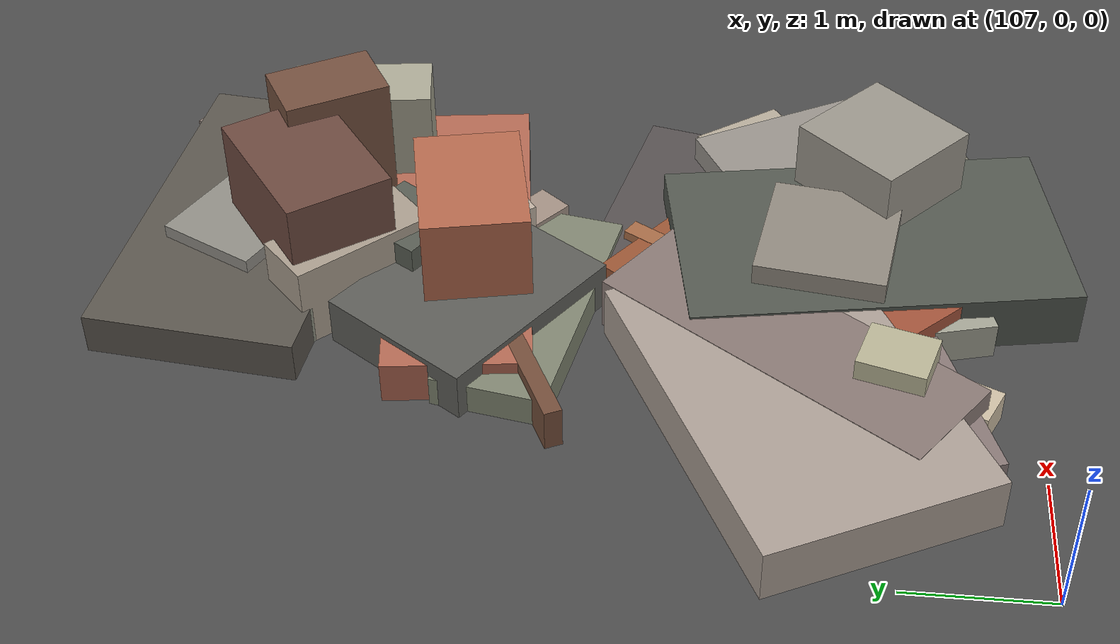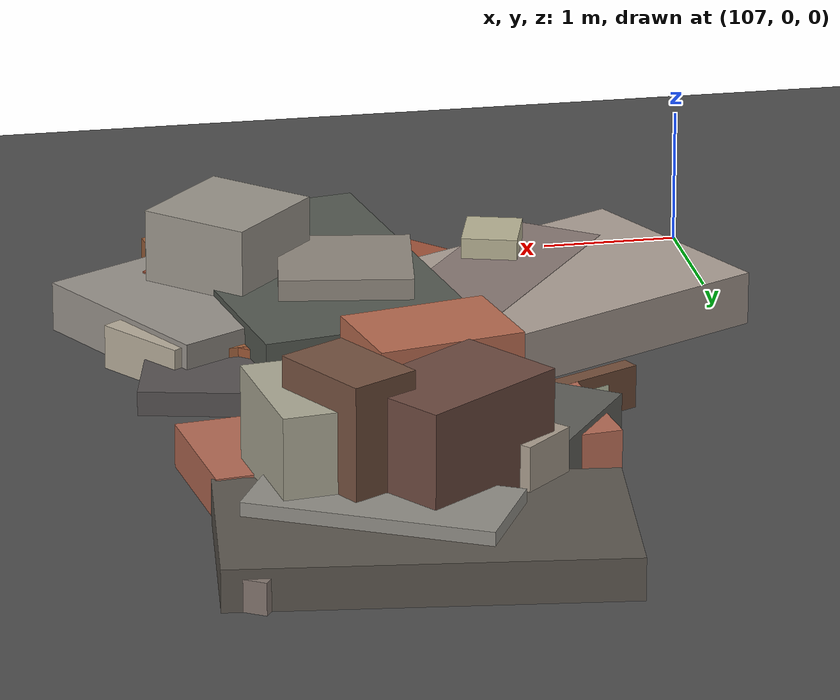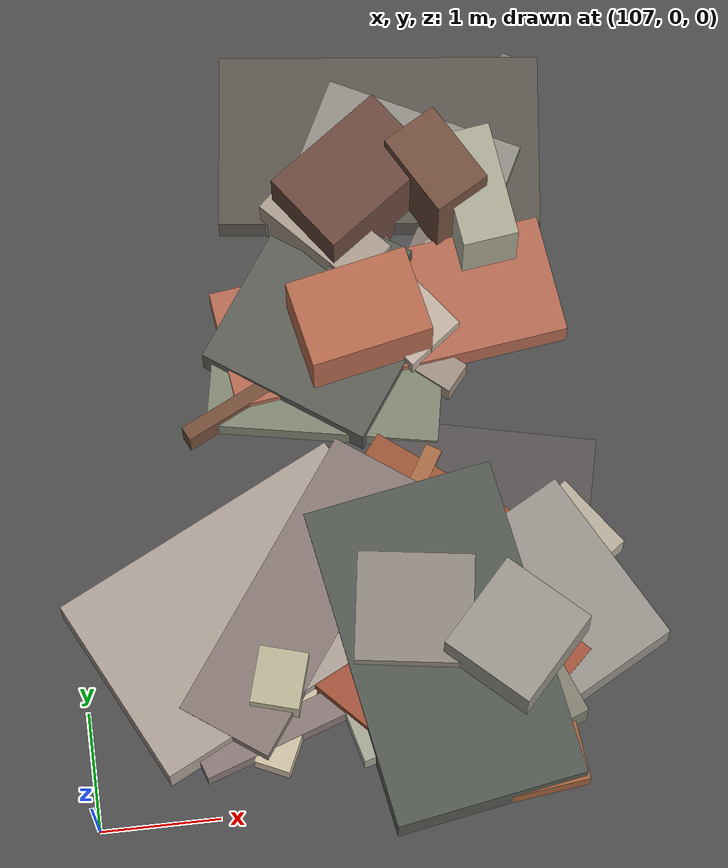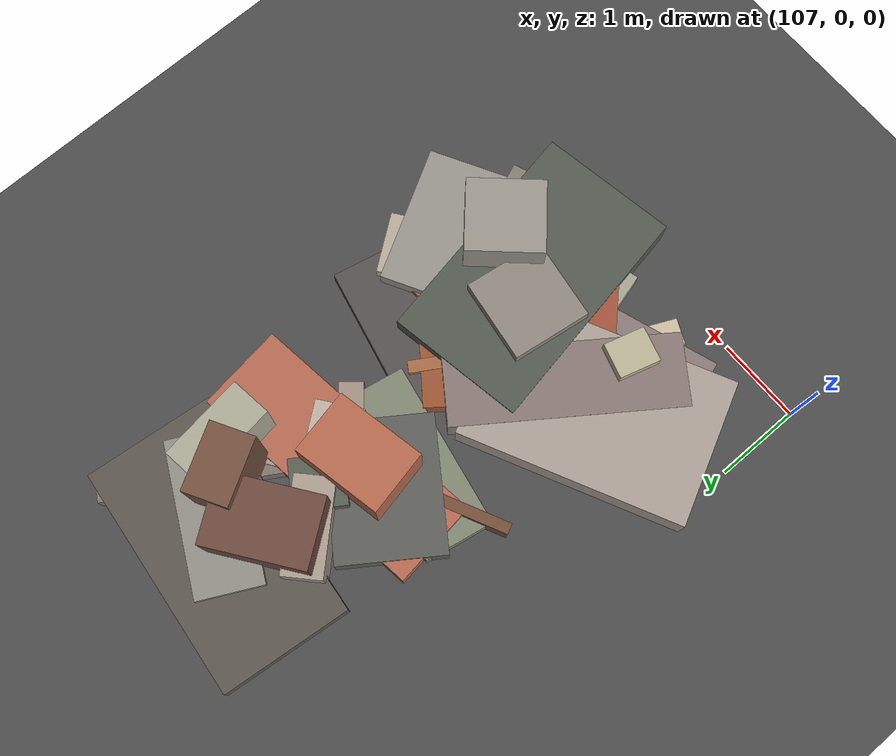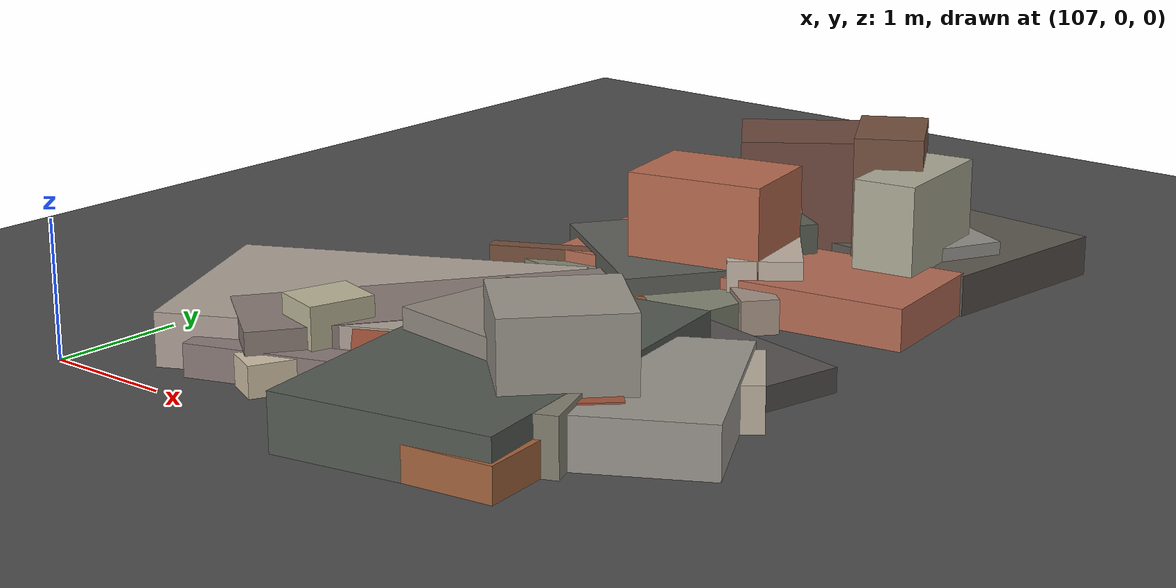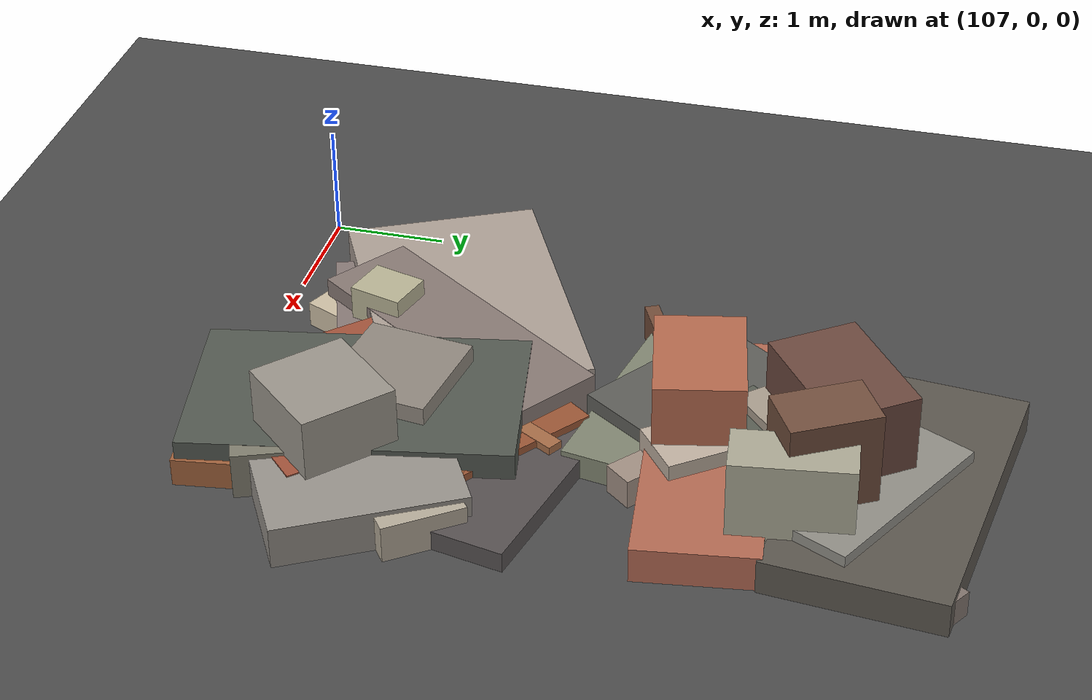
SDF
<sdf version="1.6">
 <world name="navitas_arena">
  <model name="ground_plane">
   <static>true</static>
   <link name="link">
    <collision name="collision">
     <geometry><plane><normal>0 0 1</normal><size>400 400</size></plane></geometry>
     <surface><friction><ode><mu>0.800</mu><mu2>0.800</mu2></ode></friction></surface>
    </collision>
    <visual name="visual">
     <cast_shadows>false</cast_shadows>
     <geometry><plane><normal>0 0 1</normal><size>400 400</size></plane></geometry>
     <material>
      <specular>0.04 0.04 0.04 1</specular>
      <script>
       <uri>file://media/materials/scripts/navitas_asphalt.material</uri>
       <name>Navitas/RealArenaAsphalt</name>
      </script>
     </material>
    </visual>
   </link>
  </model>
  <model name="deb_zor_47">
   <static>true</static>
   <pose>109.391 1.379 0.000 0 0 0</pose>
   <link name="link">
    <collision name="col_0">
     <pose>0.495 0.582 0.123 0.000 0.000 0.919</pose>
     <geometry><box><size>1.496 1.721 0.245</size></box></geometry>
    </collision>
    <visual name="vis_0">
     <pose>0.495 0.582 0.123 0.000 0.000 0.919</pose>
     <geometry><box><size>1.496 1.721 0.245</size></box></geometry>
     <material>
      <ambient>0.57 0.32 0.20 1</ambient>
      <diffuse>0.61 0.34 0.21 1</diffuse>
      <specular>0.05 0.05 0.045 1</specular>
     </material>
    </visual>
    <collision name="col_1">
     <pose>0.601 -0.191 0.206 0.000 0.000 1.747</pose>
     <geometry><box><size>2.757 1.621 0.412</size></box></geometry>
    </collision>
    <visual name="vis_1">
     <pose>0.601 -0.191 0.206 0.000 0.000 1.747</pose>
     <geometry><box><size>2.757 1.621 0.412</size></box></geometry>
     <material>
      <ambient>0.30 0.32 0.30 1</ambient>
      <diffuse>0.33 0.35 0.32 1</diffuse>
      <specular>0.05 0.05 0.045 1</specular>
     </material>
    </visual>
    <collision name="col_2">
     <pose>0.708 -0.103 0.205 0.000 0.000 1.951</pose>
     <geometry><box><size>2.214 1.278 0.410</size></box></geometry>
    </collision>
    <visual name="vis_2">
     <pose>0.708 -0.103 0.205 0.000 0.000 1.951</pose>
     <geometry><box><size>2.214 1.278 0.410</size></box></geometry>
     <material>
      <ambient>0.47 0.47 0.41 1</ambient>
      <diffuse>0.51 0.50 0.44 1</diffuse>
      <specular>0.05 0.05 0.045 1</specular>
     </material>
    </visual>
    <collision name="col_3">
     <pose>0.481 -0.086 0.069 0.000 0.000 2.084</pose>
     <geometry><box><size>0.275 0.406 0.137</size></box></geometry>
    </collision>
    <visual name="vis_3">
     <pose>0.481 -0.086 0.069 0.000 0.000 2.084</pose>
     <geometry><box><size>0.275 0.406 0.137</size></box></geometry>
     <material>
      <ambient>0.58 0.36 0.24 1</ambient>
      <diffuse>0.62 0.38 0.26 1</diffuse>
      <specular>0.05 0.05 0.045 1</specular>
     </material>
    </visual>
    <collision name="col_4">
     <pose>0.186 0.640 0.124 0.000 0.000 1.028</pose>
     <geometry><box><size>2.069 0.143 0.249</size></box></geometry>
    </collision>
    <visual name="vis_4">
     <pose>0.186 0.640 0.124 0.000 0.000 1.028</pose>
     <geometry><box><size>2.069 0.143 0.249</size></box></geometry>
     <material>
      <ambient>0.61 0.40 0.26 1</ambient>
      <diffuse>0.66 0.43 0.28 1</diffuse>
      <specular>0.05 0.05 0.045 1</specular>
     </material>
    </visual>
   </link>
  </model>
  <model name="deb_zor_102">
   <static>true</static>
   <pose>110.293 5.330 0.000 0 0 0</pose>
   <link name="link">
    <collision name="col_0">
     <pose>0.081 -0.204 0.604 0.000 0.000 2.091</pose>
     <geometry><box><size>0.768 0.508 1.208</size></box></geometry>
    </collision>
    <visual name="vis_0">
     <pose>0.081 -0.204 0.604 0.000 0.000 2.091</pose>
     <geometry><box><size>0.768 0.508 1.208</size></box></geometry>
     <material>
      <ambient>0.43 0.30 0.23 1</ambient>
      <diffuse>0.46 0.32 0.25 1</diffuse>
      <specular>0.05 0.05 0.045 1</specular>
     </material>
    </visual>
    <collision name="col_1">
     <pose>0.367 0.059 0.116 0.000 0.000 1.026</pose>
     <geometry><box><size>2.196 0.243 0.231</size></box></geometry>
    </collision>
    <visual name="vis_1">
     <pose>0.367 0.059 0.116 0.000 0.000 1.026</pose>
     <geometry><box><size>2.196 0.243 0.231</size></box></geometry>
     <material>
      <ambient>0.47 0.43 0.40 1</ambient>
      <diffuse>0.51 0.46 0.43 1</diffuse>
      <specular>0.05 0.05 0.045 1</specular>
     </material>
    </visual>
    <collision name="col_2">
     <pose>-0.142 0.398 0.118 0.000 0.000 0.963</pose>
     <geometry><box><size>1.185 0.221 0.236</size></box></geometry>
    </collision>
    <visual name="vis_2">
     <pose>-0.142 0.398 0.118 0.000 0.000 0.963</pose>
     <geometry><box><size>1.185 0.221 0.236</size></box></geometry>
     <material>
      <ambient>0.76 0.72 0.65 1</ambient>
      <diffuse>0.82 0.78 0.71 1</diffuse>
      <specular>0.05 0.05 0.045 1</specular>
     </material>
    </visual>
    <collision name="col_3">
     <pose>-0.333 0.350 0.151 0.000 0.000 -0.107</pose>
     <geometry><box><size>2.754 1.521 0.303</size></box></geometry>
    </collision>
    <visual name="vis_3">
     <pose>-0.333 0.350 0.151 0.000 0.000 -0.107</pose>
     <geometry><box><size>2.754 1.521 0.303</size></box></geometry>
     <material>
      <ambient>0.33 0.31 0.29 1</ambient>
      <diffuse>0.36 0.34 0.31 1</diffuse>
      <specular>0.05 0.05 0.045 1</specular>
     </material>
    </visual>
    <collision name="col_4">
     <pose>0.405 -0.388 0.491 0.000 0.000 1.702</pose>
     <geometry><box><size>1.006 0.475 0.982</size></box></geometry>
    </collision>
    <visual name="vis_4">
     <pose>0.405 -0.388 0.491 0.000 0.000 1.702</pose>
     <geometry><box><size>1.006 0.475 0.982</size></box></geometry>
     <material>
      <ambient>0.63 0.62 0.55 1</ambient>
      <diffuse>0.68 0.67 0.59 1</diffuse>
      <specular>0.05 0.05 0.045 1</specular>
     </material>
    </visual>
    <collision name="col_5">
     <pose>-0.088 0.166 0.201 0.000 0.000 -0.469</pose>
     <geometry><box><size>1.744 0.761 0.402</size></box></geometry>
    </collision>
    <visual name="vis_5">
     <pose>-0.088 0.166 0.201 0.000 0.000 -0.469</pose>
     <geometry><box><size>1.744 0.761 0.402</size></box></geometry>
     <material>
      <ambient>0.53 0.52 0.49 1</ambient>
      <diffuse>0.57 0.56 0.53 1</diffuse>
      <specular>0.05 0.05 0.045 1</specular>
     </material>
    </visual>
   </link>
  </model>
  <model name="deb_zor_155">
   <static>true</static>
   <pose>109.297 4.111 0.000 0 0 0</pose>
   <link name="link">
    <collision name="col_0">
     <pose>0.302 -0.133 0.497 0.000 0.000 0.206</pose>
     <geometry><box><size>1.048 0.754 0.993</size></box></geometry>
    </collision>
    <visual name="vis_0">
     <pose>0.302 -0.133 0.497 0.000 0.000 0.206</pose>
     <geometry><box><size>1.048 0.754 0.993</size></box></geometry>
     <material>
      <ambient>0.67 0.39 0.28 1</ambient>
      <diffuse>0.72 0.42 0.31 1</diffuse>
      <specular>0.05 0.05 0.045 1</specular>
     </material>
    </visual>
    <collision name="col_1">
     <pose>0.564 0.014 0.157 0.000 0.000 0.131</pose>
     <geometry><box><size>2.880 1.031 0.314</size></box></geometry>
    </collision>
    <visual name="vis_1">
     <pose>0.564 0.014 0.157 0.000 0.000 0.131</pose>
     <geometry><box><size>2.880 1.031 0.314</size></box></geometry>
     <material>
      <ambient>0.66 0.39 0.30 1</ambient>
      <diffuse>0.71 0.42 0.33 1</diffuse>
      <specular>0.05 0.05 0.045 1</specular>
     </material>
    </visual>
    <collision name="col_2">
     <pose>-0.064 -0.147 0.179 0.000 0.000 -0.604</pose>
     <geometry><box><size>1.542 1.216 0.358</size></box></geometry>
    </collision>
    <visual name="vis_2">
     <pose>-0.064 -0.147 0.179 0.000 0.000 -0.604</pose>
     <geometry><box><size>1.542 1.216 0.358</size></box></geometry>
     <material>
      <ambient>0.34 0.35 0.33 1</ambient>
      <diffuse>0.37 0.37 0.35 1</diffuse>
      <specular>0.05 0.05 0.045 1</specular>
     </material>
    </visual>
    <collision name="col_3">
     <pose>0.417 0.357 0.270 0.000 0.000 0.997</pose>
     <geometry><box><size>0.595 0.570 0.540</size></box></geometry>
    </collision>
    <visual name="vis_3">
     <pose>0.417 0.357 0.270 0.000 0.000 0.997</pose>
     <geometry><box><size>0.595 0.570 0.540</size></box></geometry>
     <material>
      <ambient>0.33 0.35 0.30 1</ambient>
      <diffuse>0.35 0.37 0.33 1</diffuse>
      <specular>0.05 0.05 0.045 1</specular>
     </material>
    </visual>
    <collision name="col_4">
     <pose>-0.035 -0.570 0.113 0.000 0.000 -0.184</pose>
     <geometry><box><size>1.961 0.815 0.226</size></box></geometry>
    </collision>
    <visual name="vis_4">
     <pose>-0.035 -0.570 0.113 0.000 0.000 -0.184</pose>
     <geometry><box><size>1.961 0.815 0.226</size></box></geometry>
     <material>
      <ambient>0.47 0.49 0.42 1</ambient>
      <diffuse>0.51 0.53 0.45 1</diffuse>
      <specular>0.05 0.05 0.045 1</specular>
     </material>
    </visual>
    <collision name="col_5">
     <pose>-0.015 -0.450 0.082 0.000 0.000 0.899</pose>
     <geometry><box><size>0.357 0.243 0.164</size></box></geometry>
    </collision>
    <visual name="vis_5">
     <pose>-0.015 -0.450 0.082 0.000 0.000 0.899</pose>
     <geometry><box><size>0.357 0.243 0.164</size></box></geometry>
     <material>
      <ambient>0.74 0.71 0.63 1</ambient>
      <diffuse>0.80 0.76 0.68 1</diffuse>
      <specular>0.05 0.05 0.045 1</specular>
     </material>
    </visual>
    <collision name="col_6">
     <pose>-0.243 -0.380 0.157 0.000 0.000 0.456</pose>
     <geometry><box><size>2.244 0.128 0.315</size></box></geometry>
    </collision>
    <visual name="vis_6">
     <pose>-0.243 -0.380 0.157 0.000 0.000 0.456</pose>
     <geometry><box><size>2.244 0.128 0.315</size></box></geometry>
     <material>
      <ambient>0.43 0.28 0.21 1</ambient>
      <diffuse>0.46 0.31 0.23 1</diffuse>
      <specular>0.05 0.05 0.045 1</specular>
     </material>
    </visual>
   </link>
  </model>
  <model name="deb_zor_209">
   <static>true</static>
   <pose>108.663 1.267 0.000 0 0 0</pose>
   <link name="link">
    <collision name="col_0">
     <pose>0.131 -0.538 0.121 0.000 0.000 0.334</pose>
     <geometry><box><size>1.910 0.252 0.241</size></box></geometry>
    </collision>
    <visual name="vis_0">
     <pose>0.131 -0.538 0.121 0.000 0.000 0.334</pose>
     <geometry><box><size>1.910 0.252 0.241</size></box></geometry>
     <material>
      <ambient>0.50 0.45 0.43 1</ambient>
      <diffuse>0.54 0.48 0.47 1</diffuse>
      <specular>0.05 0.05 0.045 1</specular>
     </material>
    </visual>
    <collision name="col_1">
     <pose>-0.326 0.385 0.096 0.000 0.000 1.304</pose>
     <geometry><box><size>0.374 0.253 0.193</size></box></geometry>
    </collision>
    <visual name="vis_1">
     <pose>-0.326 0.385 0.096 0.000 0.000 1.304</pose>
     <geometry><box><size>0.374 0.253 0.193</size></box></geometry>
     <material>
      <ambient>0.65 0.62 0.52 1</ambient>
      <diffuse>0.70 0.67 0.56 1</diffuse>
      <specular>0.05 0.05 0.045 1</specular>
     </material>
    </visual>
    <collision name="col_2">
     <pose>-0.252 0.396 0.196 0.000 0.000 0.464</pose>
     <geometry><box><size>2.612 1.701 0.392</size></box></geometry>
    </collision>
    <visual name="vis_2">
     <pose>-0.252 0.396 0.196 0.000 0.000 0.464</pose>
     <geometry><box><size>2.612 1.701 0.392</size></box></geometry>
     <material>
      <ambient>0.63 0.59 0.54 1</ambient>
      <diffuse>0.68 0.63 0.59 1</diffuse>
      <specular>0.05 0.05 0.045 1</specular>
     </material>
    </visual>
    <collision name="col_3">
     <pose>0.057 -0.376 0.115 0.000 0.000 1.138</pose>
     <geometry><box><size>1.220 0.306 0.230</size></box></geometry>
    </collision>
    <visual name="vis_3">
     <pose>0.057 -0.376 0.115 0.000 0.000 1.138</pose>
     <geometry><box><size>1.220 0.306 0.230</size></box></geometry>
     <material>
      <ambient>0.75 0.69 0.60 1</ambient>
      <diffuse>0.81 0.75 0.65 1</diffuse>
      <specular>0.05 0.05 0.045 1</specular>
     </material>
    </visual>
    <collision name="col_4">
     <pose>0.459 -0.180 0.136 0.000 0.000 1.830</pose>
     <geometry><box><size>1.599 0.204 0.272</size></box></geometry>
    </collision>
    <visual name="vis_4">
     <pose>0.459 -0.180 0.136 0.000 0.000 1.830</pose>
     <geometry><box><size>1.599 0.204 0.272</size></box></geometry>
     <material>
      <ambient>0.61 0.60 0.54 1</ambient>
      <diffuse>0.65 0.65 0.59 1</diffuse>
      <specular>0.05 0.05 0.045 1</specular>
     </material>
    </visual>
    <collision name="col_5">
     <pose>-0.059 -0.256 0.275 0.000 0.000 1.290</pose>
     <geometry><box><size>0.482 0.411 0.550</size></box></geometry>
    </collision>
    <visual name="vis_5">
     <pose>-0.059 -0.256 0.275 0.000 0.000 1.290</pose>
     <geometry><box><size>0.482 0.411 0.550</size></box></geometry>
     <material>
      <ambient>0.68 0.66 0.55 1</ambient>
      <diffuse>0.73 0.71 0.59 1</diffuse>
      <specular>0.05 0.05 0.045 1</specular>
     </material>
    </visual>
    <collision name="col_6">
     <pose>0.203 0.448 0.198 0.000 0.000 0.952</pose>
     <geometry><box><size>2.641 0.835 0.396</size></box></geometry>
    </collision>
    <visual name="vis_6">
     <pose>0.203 0.448 0.198 0.000 0.000 0.952</pose>
     <geometry><box><size>2.641 0.835 0.396</size></box></geometry>
     <material>
      <ambient>0.50 0.45 0.43 1</ambient>
      <diffuse>0.54 0.48 0.46 1</diffuse>
      <specular>0.05 0.05 0.045 1</specular>
     </material>
    </visual>
   </link>
  </model>
  <model name="deb_zor_267">
   <static>true</static>
   <pose>110.295 1.432 0.000 0 0 0</pose>
   <link name="link">
    <collision name="col_0">
     <pose>-0.613 -0.421 0.098 0.000 0.000 2.945</pose>
     <geometry><box><size>0.451 0.383 0.197</size></box></geometry>
    </collision>
    <visual name="vis_0">
     <pose>-0.613 -0.421 0.098 0.000 0.000 2.945</pose>
     <geometry><box><size>0.451 0.383 0.197</size></box></geometry>
     <material>
      <ambient>0.59 0.35 0.20 1</ambient>
      <diffuse>0.64 0.37 0.22 1</diffuse>
      <specular>0.05 0.05 0.045 1</specular>
     </material>
    </visual>
    <collision name="col_1">
     <pose>-0.182 -0.411 0.124 0.000 0.000 1.698</pose>
     <geometry><box><size>2.375 1.605 0.247</size></box></geometry>
    </collision>
    <visual name="vis_1">
     <pose>-0.182 -0.411 0.124 0.000 0.000 1.698</pose>
     <geometry><box><size>2.375 1.605 0.247</size></box></geometry>
     <material>
      <ambient>0.60 0.36 0.23 1</ambient>
      <diffuse>0.64 0.39 0.24 1</diffuse>
      <specular>0.05 0.05 0.045 1</specular>
     </material>
    </visual>
    <collision name="col_2">
     <pose>-0.517 0.040 0.284 0.000 0.000 2.999</pose>
     <geometry><box><size>0.975 0.928 0.569</size></box></geometry>
    </collision>
    <visual name="vis_2">
     <pose>-0.517 0.040 0.284 0.000 0.000 2.999</pose>
     <geometry><box><size>0.975 0.928 0.569</size></box></geometry>
     <material>
      <ambient>0.53 0.50 0.46 1</ambient>
      <diffuse>0.57 0.54 0.50 1</diffuse>
      <specular>0.05 0.05 0.045 1</specular>
     </material>
    </visual>
    <collision name="col_3">
     <pose>0.100 0.608 0.089 0.000 0.000 1.352</pose>
     <geometry><box><size>2.024 1.782 0.178</size></box></geometry>
    </collision>
    <visual name="vis_3">
     <pose>0.100 0.608 0.089 0.000 0.000 1.352</pose>
     <geometry><box><size>2.024 1.782 0.178</size></box></geometry>
     <material>
      <ambient>0.32 0.29 0.30 1</ambient>
      <diffuse>0.34 0.32 0.32 1</diffuse>
      <specular>0.05 0.05 0.045 1</specular>
     </material>
    </visual>
    <collision name="col_4">
     <pose>0.624 -0.183 0.112 0.000 0.000 2.519</pose>
     <geometry><box><size>0.421 0.464 0.224</size></box></geometry>
    </collision>
    <visual name="vis_4">
     <pose>0.624 -0.183 0.112 0.000 0.000 2.519</pose>
     <geometry><box><size>0.421 0.464 0.224</size></box></geometry>
     <material>
      <ambient>0.29 0.27 0.27 1</ambient>
      <diffuse>0.32 0.29 0.29 1</diffuse>
      <specular>0.05 0.05 0.045 1</specular>
     </material>
    </visual>
    <collision name="col_5">
     <pose>0.115 -0.243 0.183 0.000 0.000 3.649</pose>
     <geometry><box><size>2.432 1.608 0.366</size></box></geometry>
    </collision>
    <visual name="vis_5">
     <pose>0.115 -0.243 0.183 0.000 0.000 3.649</pose>
     <geometry><box><size>2.432 1.608 0.366</size></box></geometry>
     <material>
      <ambient>0.56 0.54 0.50 1</ambient>
      <diffuse>0.60 0.58 0.55 1</diffuse>
      <specular>0.05 0.05 0.045 1</specular>
     </material>
    </visual>
    <collision name="col_6">
     <pose>0.846 0.041 0.140 0.000 0.000 1.138</pose>
     <geometry><box><size>0.195 0.436 0.281</size></box></geometry>
    </collision>
    <visual name="vis_6">
     <pose>0.846 0.041 0.140 0.000 0.000 1.138</pose>
     <geometry><box><size>0.195 0.436 0.281</size></box></geometry>
     <material>
      <ambient>0.37 0.36 0.30 1</ambient>
      <diffuse>0.40 0.39 0.33 1</diffuse>
      <specular>0.05 0.05 0.045 1</specular>
     </material>
    </visual>
   </link>
  </model>
  <model name="deb_zor_281">
   <static>true</static>
   <pose>110.252 4.254 0.000 0 0 0</pose>
   <link name="link">
    <collision name="col_0">
     <pose>-0.602 -0.159 0.130 0.000 0.000 2.448</pose>
     <geometry><box><size>1.911 0.279 0.260</size></box></geometry>
    </collision>
    <visual name="vis_0">
     <pose>-0.602 -0.159 0.130 0.000 0.000 2.448</pose>
     <geometry><box><size>1.911 0.279 0.260</size></box></geometry>
     <material>
      <ambient>0.59 0.52 0.48 1</ambient>
      <diffuse>0.64 0.57 0.52 1</diffuse>
      <specular>0.05 0.05 0.045 1</specular>
     </material>
    </visual>
    <collision name="col_1">
     <pose>-0.330 -0.106 0.227 0.000 0.000 2.224</pose>
     <geometry><box><size>1.003 0.548 0.454</size></box></geometry>
    </collision>
    <visual name="vis_1">
     <pose>-0.330 -0.106 0.227 0.000 0.000 2.224</pose>
     <geometry><box><size>1.003 0.548 0.454</size></box></geometry>
     <material>
      <ambient>0.70 0.65 0.59 1</ambient>
      <diffuse>0.76 0.70 0.64 1</diffuse>
      <specular>0.05 0.05 0.045 1</specular>
     </material>
    </visual>
    <collision name="col_2">
     <pose>0.125 0.253 0.122 0.000 0.000 1.993</pose>
     <geometry><box><size>0.277 0.385 0.244</size></box></geometry>
    </collision>
    <visual name="vis_2">
     <pose>0.125 0.253 0.122 0.000 0.000 1.993</pose>
     <geometry><box><size>0.277 0.385 0.244</size></box></geometry>
     <material>
      <ambient>0.71 0.68 0.60 1</ambient>
      <diffuse>0.77 0.74 0.65 1</diffuse>
      <specular>0.05 0.05 0.045 1</specular>
     </material>
    </visual>
    <collision name="col_3">
     <pose>0.473 0.573 0.145 0.000 0.000 1.510</pose>
     <geometry><box><size>0.404 0.289 0.291</size></box></geometry>
    </collision>
    <visual name="vis_3">
     <pose>0.473 0.573 0.145 0.000 0.000 1.510</pose>
     <geometry><box><size>0.404 0.289 0.291</size></box></geometry>
     <material>
      <ambient>0.53 0.50 0.48 1</ambient>
      <diffuse>0.57 0.53 0.52 1</diffuse>
      <specular>0.05 0.05 0.045 1</specular>
     </material>
    </visual>
    <collision name="col_4">
     <pose>0.160 0.489 0.126 0.000 0.000 0.606</pose>
     <geometry><box><size>1.027 0.173 0.252</size></box></geometry>
    </collision>
    <visual name="vis_4">
     <pose>0.160 0.489 0.126 0.000 0.000 0.606</pose>
     <geometry><box><size>1.027 0.173 0.252</size></box></geometry>
     <material>
      <ambient>0.60 0.56 0.50 1</ambient>
      <diffuse>0.64 0.60 0.54 1</diffuse>
      <specular>0.05 0.05 0.045 1</specular>
     </material>
    </visual>
   </link>
  </model>
  <model name="deb_zor_330">
   <static>true</static>
   <pose>110.003 1.198 0.000 0 0 0</pose>
   <link name="link">
    <collision name="col_0">
     <pose>0.575 -0.087 0.452 0.000 0.000 0.828</pose>
     <geometry><box><size>0.883 0.842 0.904</size></box></geometry>
    </collision>
    <visual name="vis_0">
     <pose>0.575 -0.087 0.452 0.000 0.000 0.828</pose>
     <geometry><box><size>0.883 0.842 0.904</size></box></geometry>
     <material>
      <ambient>0.56 0.55 0.51 1</ambient>
      <diffuse>0.61 0.59 0.55 1</diffuse>
      <specular>0.05 0.05 0.045 1</specular>
     </material>
    </visual>
    <collision name="col_1">
     <pose>-0.258 0.517 0.103 0.000 0.000 -0.186</pose>
     <geometry><box><size>1.734 0.910 0.206</size></box></geometry>
    </collision>
    <visual name="vis_1">
     <pose>-0.258 0.517 0.103 0.000 0.000 -0.186</pose>
     <geometry><box><size>1.734 0.910 0.206</size></box></geometry>
     <material>
      <ambient>0.57 0.54 0.48 1</ambient>
      <diffuse>0.61 0.58 0.51 1</diffuse>
      <specular>0.05 0.05 0.045 1</specular>
     </material>
    </visual>
    <collision name="col_2">
     <pose>-0.376 0.500 0.180 0.000 0.000 0.133</pose>
     <geometry><box><size>0.728 0.707 0.361</size></box></geometry>
    </collision>
    <visual name="vis_2">
     <pose>-0.376 0.500 0.180 0.000 0.000 0.133</pose>
     <geometry><box><size>0.728 0.707 0.361</size></box></geometry>
     <material>
      <ambient>0.71 0.70 0.61 1</ambient>
      <diffuse>0.77 0.76 0.66 1</diffuse>
      <specular>0.05 0.05 0.045 1</specular>
     </material>
    </visual>
    <collision name="col_3">
     <pose>-0.517 0.063 0.093 0.000 0.000 -1.060</pose>
     <geometry><box><size>0.234 0.169 0.186</size></box></geometry>
    </collision>
    <visual name="vis_3">
     <pose>-0.517 0.063 0.093 0.000 0.000 -1.060</pose>
     <geometry><box><size>0.234 0.169 0.186</size></box></geometry>
     <material>
      <ambient>0.59 0.33 0.22 1</ambient>
      <diffuse>0.64 0.36 0.24 1</diffuse>
      <specular>0.05 0.05 0.045 1</specular>
     </material>
    </visual>
    <collision name="col_4">
     <pose>-0.522 0.009 0.116 0.000 0.000 0.592</pose>
     <geometry><box><size>1.217 0.240 0.233</size></box></geometry>
    </collision>
    <visual name="vis_4">
     <pose>-0.522 0.009 0.116 0.000 0.000 0.592</pose>
     <geometry><box><size>1.217 0.240 0.233</size></box></geometry>
     <material>
      <ambient>0.47 0.47 0.44 1</ambient>
      <diffuse>0.51 0.51 0.48 1</diffuse>
      <specular>0.05 0.05 0.045 1</specular>
     </material>
    </visual>
    <collision name="col_5">
     <pose>0.001 -0.185 0.189 0.000 0.000 0.769</pose>
     <geometry><box><size>1.686 1.675 0.377</size></box></geometry>
    </collision>
    <visual name="vis_5">
     <pose>0.001 -0.185 0.189 0.000 0.000 0.769</pose>
     <geometry><box><size>1.686 1.675 0.377</size></box></geometry>
     <material>
      <ambient>0.60 0.31 0.21 1</ambient>
      <diffuse>0.64 0.33 0.23 1</diffuse>
      <specular>0.05 0.05 0.045 1</specular>
     </material>
    </visual>
    <collision name="col_6">
     <pose>0.539 0.371 0.163 0.000 0.000 0.633</pose>
     <geometry><box><size>2.073 0.714 0.327</size></box></geometry>
    </collision>
    <visual name="vis_6">
     <pose>0.539 0.371 0.163 0.000 0.000 0.633</pose>
     <geometry><box><size>2.073 0.714 0.327</size></box></geometry>
     <material>
      <ambient>0.67 0.63 0.57 1</ambient>
      <diffuse>0.72 0.68 0.61 1</diffuse>
      <specular>0.05 0.05 0.045 1</specular>
     </material>
    </visual>
   </link>
  </model>
  <model name="deb_zor_334">
   <static>true</static>
   <pose>109.348 4.644 0.000 0 0 0</pose>
   <link name="link">
    <collision name="col_0">
     <pose>-0.407 0.505 0.149 0.000 0.000 1.014</pose>
     <geometry><box><size>0.241 0.391 0.298</size></box></geometry>
    </collision>
    <visual name="vis_0">
     <pose>-0.407 0.505 0.149 0.000 0.000 1.014</pose>
     <geometry><box><size>0.241 0.391 0.298</size></box></geometry>
     <material>
      <ambient>0.52 0.53 0.47 1</ambient>
      <diffuse>0.56 0.57 0.51 1</diffuse>
      <specular>0.05 0.05 0.045 1</specular>
     </material>
    </visual>
    <collision name="col_1">
     <pose>0.059 -0.617 0.085 0.000 0.000 -0.259</pose>
     <geometry><box><size>0.267 0.390 0.171</size></box></geometry>
    </collision>
    <visual name="vis_1">
     <pose>0.059 -0.617 0.085 0.000 0.000 -0.259</pose>
     <geometry><box><size>0.267 0.390 0.171</size></box></geometry>
     <material>
      <ambient>0.44 0.32 0.25 1</ambient>
      <diffuse>0.48 0.35 0.27 1</diffuse>
      <specular>0.05 0.05 0.045 1</specular>
     </material>
    </visual>
    <collision name="col_2">
     <pose>0.057 0.194 0.312 0.000 0.000 2.326</pose>
     <geometry><box><size>1.076 0.453 0.625</size></box></geometry>
    </collision>
    <visual name="vis_2">
     <pose>0.057 0.194 0.312 0.000 0.000 2.326</pose>
     <geometry><box><size>1.076 0.453 0.625</size></box></geometry>
     <material>
      <ambient>0.62 0.57 0.52 1</ambient>
      <diffuse>0.67 0.62 0.56 1</diffuse>
      <specular>0.05 0.05 0.045 1</specular>
     </material>
    </visual>
    <collision name="col_3">
     <pose>-0.286 0.654 0.128 0.000 0.000 1.972</pose>
     <geometry><box><size>0.520 0.345 0.256</size></box></geometry>
    </collision>
    <visual name="vis_3">
     <pose>-0.286 0.654 0.128 0.000 0.000 1.972</pose>
     <geometry><box><size>0.520 0.345 0.256</size></box></geometry>
     <material>
      <ambient>0.32 0.35 0.30 1</ambient>
      <diffuse>0.35 0.37 0.33 1</diffuse>
      <specular>0.05 0.05 0.045 1</specular>
     </material>
    </visual>
    <collision name="col_4">
     <pose>0.331 0.509 0.537 0.000 0.000 0.629</pose>
     <geometry><box><size>1.148 0.780 1.074</size></box></geometry>
    </collision>
    <visual name="vis_4">
     <pose>0.331 0.509 0.537 0.000 0.000 0.629</pose>
     <geometry><box><size>1.148 0.780 1.074</size></box></geometry>
     <material>
      <ambient>0.40 0.27 0.23 1</ambient>
      <diffuse>0.43 0.29 0.25 1</diffuse>
      <specular>0.05 0.05 0.045 1</specular>
     </material>
    </visual>
    <collision name="col_5">
     <pose>0.428 0.203 0.082 0.000 0.000 1.915</pose>
     <geometry><box><size>0.337 0.319 0.165</size></box></geometry>
    </collision>
    <visual name="vis_5">
     <pose>0.428 0.203 0.082 0.000 0.000 1.915</pose>
     <geometry><box><size>0.337 0.319 0.165</size></box></geometry>
     <material>
      <ambient>0.44 0.29 0.24 1</ambient>
      <diffuse>0.48 0.31 0.26 1</diffuse>
      <specular>0.05 0.05 0.045 1</specular>
     </material>
    </visual>
   </link>
  </model>
 </world>
</sdf>
